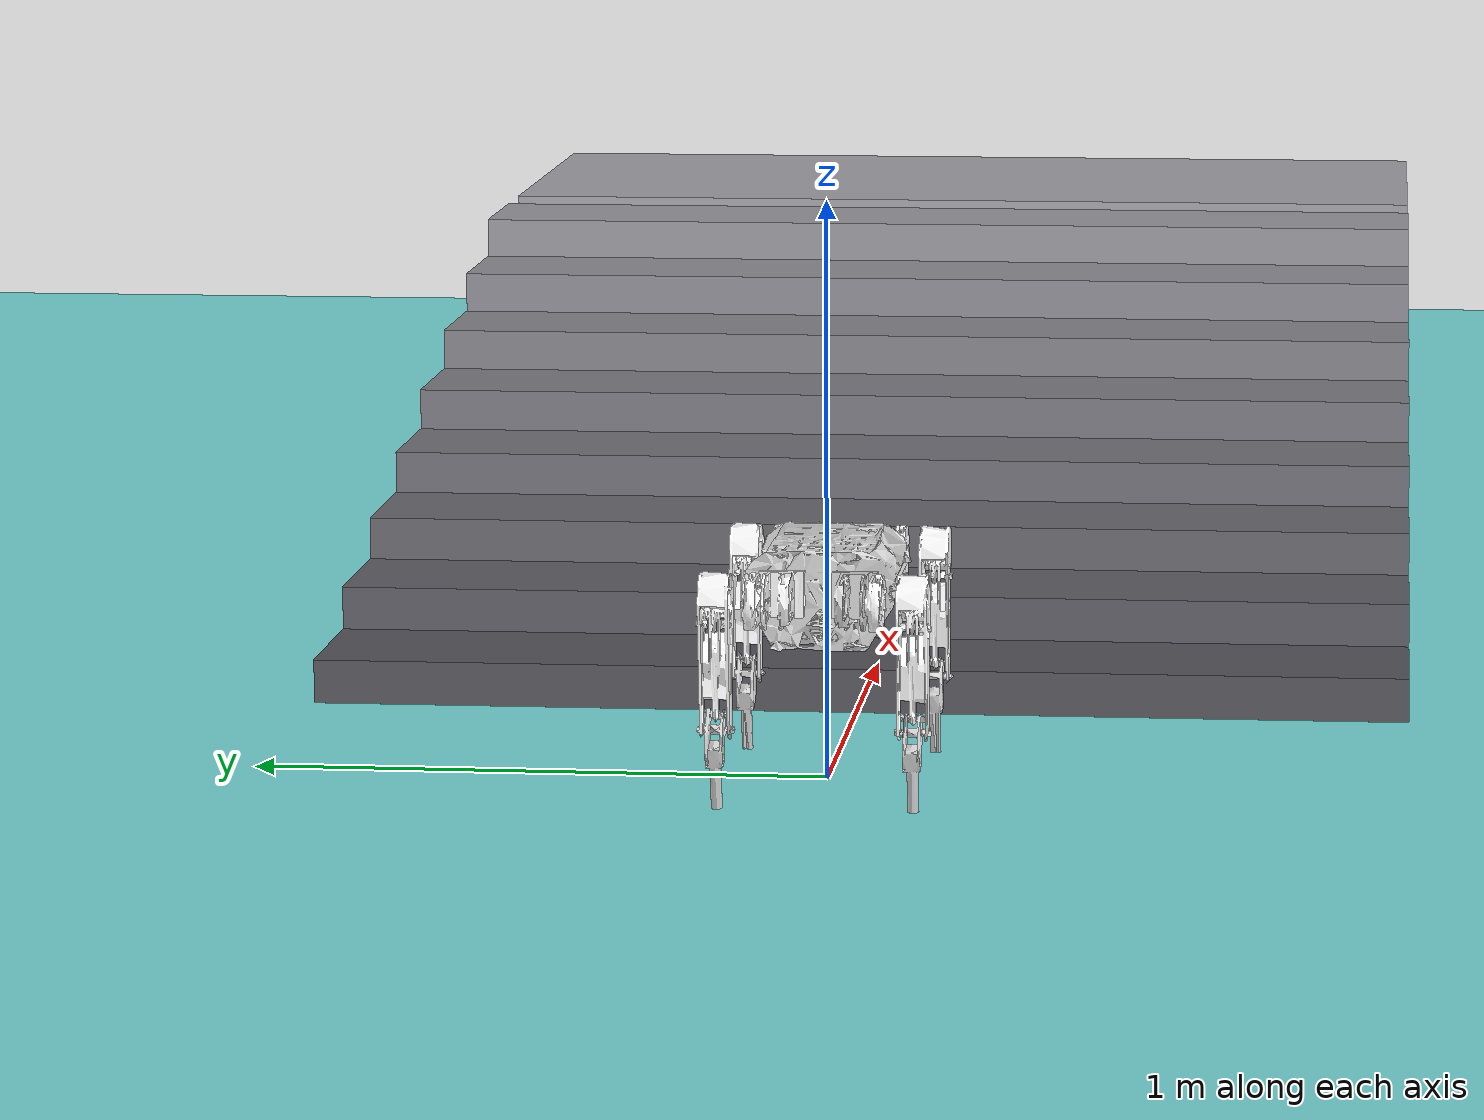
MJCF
<?xml version='1.0' encoding='utf-8'?>
<mujoco model="mybot_v3">
    <compiler angle="radian" meshdir="../meshes/" autolimits="true" />
    <size njmax="500" nconmax="100" />
    <option gravity="0 0 -9.806" iterations="50" solver="Newton" timestep="0.005" />

    <default>
        <default class="dog_v2">
            <geom contype="1" conaffinity="1" friction="0.6 0.3 0.3" rgba="0.5 0.6 0.7 1" margin="0.001" group="0" />
            <joint armature="0.01" damping="2" frictionloss="0.2" />
            <motor ctrlrange="-33.5 33.5" ctrllimited="true" />

            <default class="abduction">
                <joint damping="1" />
            </default>
            <default class="thigh">
                <joint damping="2" />
            </default>
            <default class="calf">
                <joint damping="2" armature="0.0544" />
                <motor gear="2.3333" />
            </default>
        </default>

        <light castshadow="false" diffuse="1 1 1" />
        <camera fovy="60" />
    </default>

    <asset>
        <mesh name="body" file="body.STL" />
        <mesh name="FL_hip" file="FL_hip.STL" />
        <mesh name="FL_thigh" file="FL_thigh.STL" />
        <mesh name="FL_calf" file="FL_calf.STL" />
        <mesh name="FL_foot" file="FL_foot.STL" />
        <mesh name="FR_hip" file="FR_hip.STL" />
        <mesh name="FR_thigh" file="FR_thigh.STL" />
        <mesh name="FR_calf" file="FR_calf.STL" />
        <mesh name="FR_foot" file="FR_foot.STL" />
        <mesh name="RL_hip" file="RL_hip.STL" />
        <mesh name="RL_thigh" file="RL_thigh.STL" />
        <mesh name="RL_calf" file="RL_calf.STL" />
        <mesh name="RL_foot" file="RL_foot.STL" />
        <mesh name="RR_hip" file="RR_hip.STL" />
        <mesh name="RR_thigh" file="RR_thigh.STL" />
        <mesh name="RR_calf" file="RR_calf.STL" />
        <mesh name="RR_foot" file="RR_foot.STL" />

        <texture type="skybox" builtin="gradient" rgb1="1.0 1.0 1.0" rgb2="1.0 1.0 1.0" width="512" height="512" />
        <texture name="plane" type="2d" builtin="flat" rgb1="1 1 1" rgb2="1 1 1" width="512" height="512" mark="cross" markrgb="0 0 0" />
        <material name="plane" reflectance="0.0" texture="plane" texrepeat="3 3" texuniform="true" />
    </asset>

    <visual>
        <rgba com="0.502 1.0 0 0.5" contactforce="0.98 0.4 0.4 0.7" contactpoint="1.0 1.0 0.6 0.4" />
        <scale com="0.2" forcewidth="0.035" contactwidth="0.10" contactheight="0.04" />
    </visual>

    <worldbody>
        <light directional="true" diffuse=".8 .8 .8" pos="0 0 10" dir="0 0 -10" />
        <camera name="track" mode="trackcom" pos="0 -1.3 1.6" xyaxes="1 0 0 0 0.707 0.707" />
        <geom name="floor" type="plane" conaffinity="1" condim="3" contype="1" rgba="0.5 0.9 0.9 0.1" material="plane" pos="0 0 0" size="0 0 1" />

        <!-- Simple reproducible stairs for sim2sim. The bridge disables these for terrain_mode=flat. -->
        <geom name="sim_stair_0" type="box" pos="0.7 0 0.04" size="0.15 1.0 0.04" friction="1 0.5 0.1" rgba="0.35 0.35 0.38 1" />
        <geom name="sim_stair_1" type="box" pos="1.0 0 0.08" size="0.15 1.0 0.08" friction="1 0.5 0.1" rgba="0.39 0.39 0.42 1" />
        <geom name="sim_stair_2" type="box" pos="1.3 0 0.12" size="0.15 1.0 0.12" friction="1 0.5 0.1" rgba="0.43 0.43 0.46 1" />
        <geom name="sim_stair_3" type="box" pos="1.6 0 0.16" size="0.15 1.0 0.16" friction="1 0.5 0.1" rgba="0.47 0.47 0.50 1" />
        <geom name="sim_stair_4" type="box" pos="1.9 0 0.20" size="0.15 1.0 0.20" friction="1 0.5 0.1" rgba="0.51 0.51 0.54 1" />
        <geom name="sim_stair_5" type="box" pos="2.2 0 0.24" size="0.15 1.0 0.24" friction="1 0.5 0.1" rgba="0.55 0.55 0.58 1" />
        <geom name="sim_stair_6" type="box" pos="2.5 0 0.28" size="0.15 1.0 0.28" friction="1 0.5 0.1" rgba="0.59 0.59 0.62 1" />
        <geom name="sim_stair_7" type="box" pos="2.8 0 0.32" size="0.15 1.0 0.32" friction="1 0.5 0.1" rgba="0.63 0.63 0.66 1" />
        <geom name="sim_stair_top" type="box" pos="3.55 0 0.32" size="0.45 1.0 0.32" friction="1 0.5 0.1" rgba="0.67 0.67 0.70 1" />

        <body name="body" pos="0 0 0.35" childclass="dog_v2">
            <inertial pos="0.00000000 0.00000000 0.00000000" mass="3.87237343" fullinertia="0.02571059 0.06723291 0.07677825 0.00000003 0.00005548 0.00000039" />
            <joint type="free" />
            <geom type="mesh" contype="0" conaffinity="0" group="1" rgba="0.847 0.847 0.847 1" mesh="body" />
            <geom size="0.15 0.1 0.08" pos="-0.0 0 -0.0" type="box" rgba="0.913 0.913 0.847 0" />
            <site name="imu" pos="0 0 0" />

            <body name="FL_hip" pos="0.15078 0.062035 0.0028793">
                <inertial pos="0.06912954 0.00308032 -0.00003864" mass="0.88715151" fullinertia="0.00069961 0.00185100 0.00156540 -0.00005524 0.00000161 -0.00000029" />
                <joint class="abduction" name="FL_hip_joint" pos="0 0 0" axis="1 0 0" range="-0.8 0.8" />
                <geom type="mesh" contype="0" conaffinity="0" group="1" rgba="1 1 1 1" mesh="FL_hip" />
                <geom size="0.04 0.03" euler="1.5707963 0 0" type="cylinder" rgba="0.913 0.913 0.847 0" />

                <body name="FL_thigh" pos="0.0889996956253644 0.0289500000000045 0">
                    <inertial pos="-0.00157835 0.05108903 -0.03349728" mass="1.44059854" fullinertia="0.00712300 0.00681289 0.00198498 0.00006001 -0.00006848 0.00118491" />
                    <joint class="thigh" name="FL_thigh_joint" pos="0 0 0" axis="0 1 0" range="-1.04 4.18" />
                    <geom type="mesh" contype="0" conaffinity="0" group="1" rgba="1 1 1 1" mesh="FL_thigh" />
                    <geom size="0.02 0.02 0.1" pos="0 0.08 -0.1" type="box" rgba="0.913 0.913 0.847 0" />

                    <body name="FL_calf" pos="0 0.075299999999995 -0.220000271728273">
                        <inertial pos="0.00128763 0.00019208 -0.06746137" mass="0.23708419" fullinertia="0.00201781 0.00206401 0.00012004 -0.00000038 0.00025632 0.00000347" />
                        <joint class="calf" name="FL_calf_joint" pos="0 0 0" axis="0 1 0" range="-2.69 -0.91" />
                        <geom type="mesh" contype="0" conaffinity="0" group="1" rgba="0.847 0.847 0.847 1" mesh="FL_calf" />
                        <geom size="0.01 0.01 0.1" pos="0 0 -0.1" type="box" rgba="0 0 0 0" />

                        <body name="FL_foot" pos="0 0.000400000000007244 -0.226044482407549">
                            <inertial pos="0.00000000 0.00000000 0.00000000" mass="0.03900000" fullinertia="0.00000624 0.00000624 0.00000624 0.00000000 0.00000000 0.00000000" />
                            <geom type="mesh" contype="0" conaffinity="0" group="1" rgba="0.298 0.298 0.298 1" mesh="FL_foot" />
                            <geom size="0.02" type="sphere" rgba="0 0 0 1" />
                        </body>
                    </body>
                </body>
            </body>

            <body name="FR_hip" pos="0.15078 -0.061965 0.0028793">
                <inertial pos="0.06924677 -0.00308032 -0.00003847" mass="0.88715151" fullinertia="0.00069961 0.00185513 0.00156952 0.00005408 -0.00000026 0.00000029" />
                <joint class="abduction" name="FR_hip_joint" pos="0 0 0" axis="1 0 0" range="-0.8 0.8" />
                <geom type="mesh" contype="0" conaffinity="0" group="1" rgba="1 1 1 1" mesh="FR_hip" />
                <geom size="0.04 0.03" euler="1.5707963 0 0" type="cylinder" rgba="0.913 0.913 0.847 0" />

                <body name="FR_thigh" pos="0.0889996956253649 -0.0289500000000027 0">
                    <inertial pos="-0.00165058 -0.05108904 -0.03349728" mass="1.44059854" fullinertia="0.00712300 0.00681255 0.00198464 -0.00005712 -0.00006685 -0.00118491" />
                    <joint class="thigh" name="FR_thigh_joint" pos="0 0 0" axis="0 1 0" range="-1.04 4.18" />
                    <geom type="mesh" contype="0" conaffinity="0" group="1" rgba="1 1 1 1" mesh="FR_thigh" />
                    <geom size="0.02 0.02 0.1" pos="0 -0.08 -0.1" type="box" rgba="0.913 0.913 0.847 0" />

                    <body name="FR_calf" pos="0 -0.0752999999999995 -0.220000271728275">
                        <inertial pos="0.00128778 0.00059175 -0.06722727" mass="0.23765586" fullinertia="0.00208296 0.00206862 0.00018061 0.00000010 0.00025619 -0.00002062" />
                        <joint class="calf" name="FR_calf_joint" pos="0 0 0" axis="0 1 0" range="-2.69 -0.91" />
                        <geom type="mesh" contype="0" conaffinity="0" group="1" rgba="0.847 0.847 0.847 1" mesh="FR_calf" />
                        <geom size="0.01 0.01 0.1" pos="0 0 -0.1" type="box" rgba="0 0 0 0" />

                        <body name="FR_foot" pos="0 -0.000399999999994072 -0.226044482407548">
                            <inertial pos="0.00000000 0.00000000 0.00000000" mass="0.03900000" fullinertia="0.00000624 0.00000624 0.00000624 0.00000000 0.00000000 0.00000000" />
                            <geom type="mesh" contype="0" conaffinity="0" group="1" rgba="0.298 0.298 0.298 1" mesh="FR_foot" />
                            <geom size="0.02" type="sphere" rgba="0 0 0 1" />
                        </body>
                    </body>
                </body>
            </body>

            <body name="RL_hip" pos="-0.15042 0.062035 0.0028793">
                <inertial pos="-0.06912961 0.00308032 0.00003847" mass="0.88715151" fullinertia="0.00069961 0.00185101 0.00156540 0.00005524 0.00000161 0.00000029" />
                <joint class="abduction" name="RL_hip_joint" pos="0 0 0" axis="1 0 0" range="-0.8 0.8" />
                <geom type="mesh" contype="0" conaffinity="0" group="1" rgba="1 1 1 1" mesh="RL_hip" />
                <geom size="0.04 0.03" euler="1.5707963 0 0" type="cylinder" rgba="0.913 0.913 0.847 0" />

                <body name="RL_thigh" pos="-0.0889996956253643 0.0289499874999981 0">
                    <inertial pos="-0.00160464 0.05142477 -0.03321690" mass="1.45185979" fullinertia="0.00716742 0.00683898 0.00201350 0.00006033 -0.00006711 0.00116896" />
                    <joint class="thigh" name="RL_thigh_joint" pos="0 0 0" axis="0 1 0" range="-1.04 4.18" />
                    <geom type="mesh" contype="0" conaffinity="0" group="1" rgba="1 1 1 1" mesh="RL_thigh" />
                    <geom size="0.02 0.02 0.1" pos="0 0.08 -0.1" type="box" rgba="0.913 0.913 0.847 0" />

                    <body name="RL_calf" pos="0 0.0752999999999953 -0.220000271728273">
                        <inertial pos="0.00125720 0.00001358 -0.06699953" mass="0.23880158" fullinertia="0.00202425 0.00207095 0.00011991 0.00000000 0.00025653 -0.00000027" />
                        <joint class="calf" name="RL_calf_joint" pos="0 0 0" axis="0 1 0" range="-2.69 -0.91" />
                        <geom type="mesh" contype="0" conaffinity="0" group="1" rgba="0.847 0.847 0.847 1" mesh="RL_calf" />
                        <geom size="0.01 0.01 0.1" pos="0 0 -0.1" type="box" rgba="0 0 0 0" />

                        <body name="RL_foot" pos="0 0 -0.226044482410381">
                            <inertial pos="0.00000000 0.00000000 0.00000000" mass="0.03900000" fullinertia="0.00000624 0.00000624 0.00000624 0.00000000 0.00000000 0.00000000" />
                            <geom type="mesh" contype="0" conaffinity="0" group="1" rgba="0.298 0.298 0.298 1" mesh="RL_foot" />
                            <geom size="0.02" type="sphere" rgba="0 0 0 1" />
                        </body>
                    </body>
                </body>
            </body>

            <body name="RR_hip" pos="-0.150422440000001 -0.0619648146458117 0.00287929128020871">
                <inertial pos="-0.06924676 -0.00308032 0.00003847" mass="0.88715151" fullinertia="0.00069961 0.00185513 0.00156952 -0.00005408 -0.00000026 -0.00000029" />
                <joint class="abduction" name="RR_hip_joint" pos="0 0 0" axis="1 0 0" range="-0.8 0.8" />
                <geom type="mesh" contype="0" conaffinity="0" group="1" rgba="0.847 0.847 0.847 1" mesh="RR_hip" />
                <geom size="0.04 0.03" euler="1.5707963 0 0" type="cylinder" rgba="0.913 0.913 0.847 0" />

                <body name="RR_thigh" pos="-0.0889996956253639 -0.0289499875000004 0">
                    <inertial pos="-0.00167539 -0.05090610 -0.02942817" mass="1.42118841" fullinertia="0.00608478 0.00578599 0.00198060 -0.00005774 -0.00007671 -0.00103286" />
                    <joint class="thigh" name="RR_thigh_joint" pos="0 0 0" axis="0 1 0" range="-1.04 4.18" />
                    <geom type="mesh" contype="0" conaffinity="0" group="1" rgba="1 1 1 1" mesh="RR_thigh" />
                    <geom size="0.02 0.02 0.1" pos="0 -0.08 -0.1" type="box" rgba="0.913 0.913 0.847 0" />

                    <body name="RR_calf" pos="0 -0.0752999999999974 -0.220000271728273">
                        <inertial pos="0.00105039 -0.00009676 -0.06329053" mass="0.25719862" fullinertia="0.00207090 0.00210651 0.00013106 -0.00000003 0.00026042 0.00000158" />
                        <joint class="calf" name="RR_calf_joint" pos="0 0 0" axis="0 1 0" range="-2.69 -0.91" />
                        <geom type="mesh" contype="0" conaffinity="0" group="1" rgba="0.847 0.847 0.847 1" mesh="RR_calf" />
                        <geom size="0.01 0.01 0.1" pos="0 0 -0.1" type="box" rgba="0 0 0 0" />

                        <body name="RR_foot" pos="0 0 -0.226044482410382">
                            <inertial pos="0.00000000 0.00000000 0.00000000" mass="0.03900000" fullinertia="0.00000624 0.00000624 0.00000624 0.00000000 0.00000000 0.00000000" />
                            <geom type="mesh" contype="0" conaffinity="0" group="1" rgba="0.298 0.298 0.298 1" mesh="RR_foot" />
                            <geom size="0.02" type="sphere" rgba="0 0 0 1" />
                        </body>
                    </body>
                </body>
            </body>
        </body>
    </worldbody>

    <actuator>
        <motor class="abduction" name="FL_hip" gear="1" joint="FL_hip_joint" />
        <motor class="thigh" name="FL_thigh" gear="1" joint="FL_thigh_joint" />
        <motor class="calf" name="FL_calf" joint="FL_calf_joint" />
        <motor class="abduction" name="FR_hip" gear="1" joint="FR_hip_joint" />
        <motor class="thigh" name="FR_thigh" gear="1" joint="FR_thigh_joint" />
        <motor class="calf" name="FR_calf" joint="FR_calf_joint" />
        <motor class="abduction" name="RL_hip" gear="1" joint="RL_hip_joint" />
        <motor class="thigh" name="RL_thigh" gear="1" joint="RL_thigh_joint" />
        <motor class="calf" name="RL_calf" joint="RL_calf_joint" />
        <motor class="abduction" name="RR_hip" gear="1" joint="RR_hip_joint" />
        <motor class="thigh" name="RR_thigh" gear="1" joint="RR_thigh_joint" />
        <motor class="calf" name="RR_calf" joint="RR_calf_joint" />
    </actuator>

    <sensor>
        <jointpos name="FL_hip_pos" joint="FL_hip_joint" />
        <jointpos name="FL_thigh_pos" joint="FL_thigh_joint" />
        <jointpos name="FL_calf_pos" joint="FL_calf_joint" />
        <jointpos name="FR_hip_pos" joint="FR_hip_joint" />
        <jointpos name="FR_thigh_pos" joint="FR_thigh_joint" />
        <jointpos name="FR_calf_pos" joint="FR_calf_joint" />
        <jointpos name="RL_hip_pos" joint="RL_hip_joint" />
        <jointpos name="RL_thigh_pos" joint="RL_thigh_joint" />
        <jointpos name="RL_calf_pos" joint="RL_calf_joint" />
        <jointpos name="RR_hip_pos" joint="RR_hip_joint" />
        <jointpos name="RR_thigh_pos" joint="RR_thigh_joint" />
        <jointpos name="RR_calf_pos" joint="RR_calf_joint" />

        <jointvel name="FL_hip_vel" joint="FL_hip_joint" />
        <jointvel name="FL_thigh_vel" joint="FL_thigh_joint" />
        <jointvel name="FL_calf_vel" joint="FL_calf_joint" />
        <jointvel name="FR_hip_vel" joint="FR_hip_joint" />
        <jointvel name="FR_thigh_vel" joint="FR_thigh_joint" />
        <jointvel name="FR_calf_vel" joint="FR_calf_joint" />
        <jointvel name="RL_hip_vel" joint="RL_hip_joint" />
        <jointvel name="RL_thigh_vel" joint="RL_thigh_joint" />
        <jointvel name="RL_calf_vel" joint="RL_calf_joint" />
        <jointvel name="RR_hip_vel" joint="RR_hip_joint" />
        <jointvel name="RR_thigh_vel" joint="RR_thigh_joint" />
        <jointvel name="RR_calf_vel" joint="RR_calf_joint" />

        <accelerometer name="Body_Acc" site="imu" />
        <gyro name="Body_Gyro" site="imu" />
        <framepos name="Body_Pos" objtype="site" objname="imu" />
        <framequat name="Body_Quat" objtype="site" objname="imu" />
    </sensor>
</mujoco>
